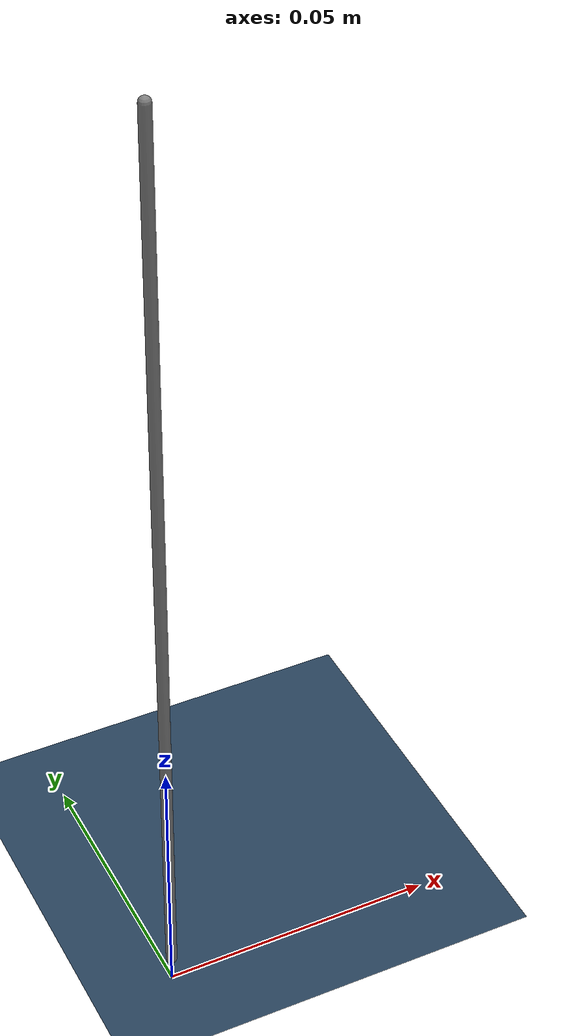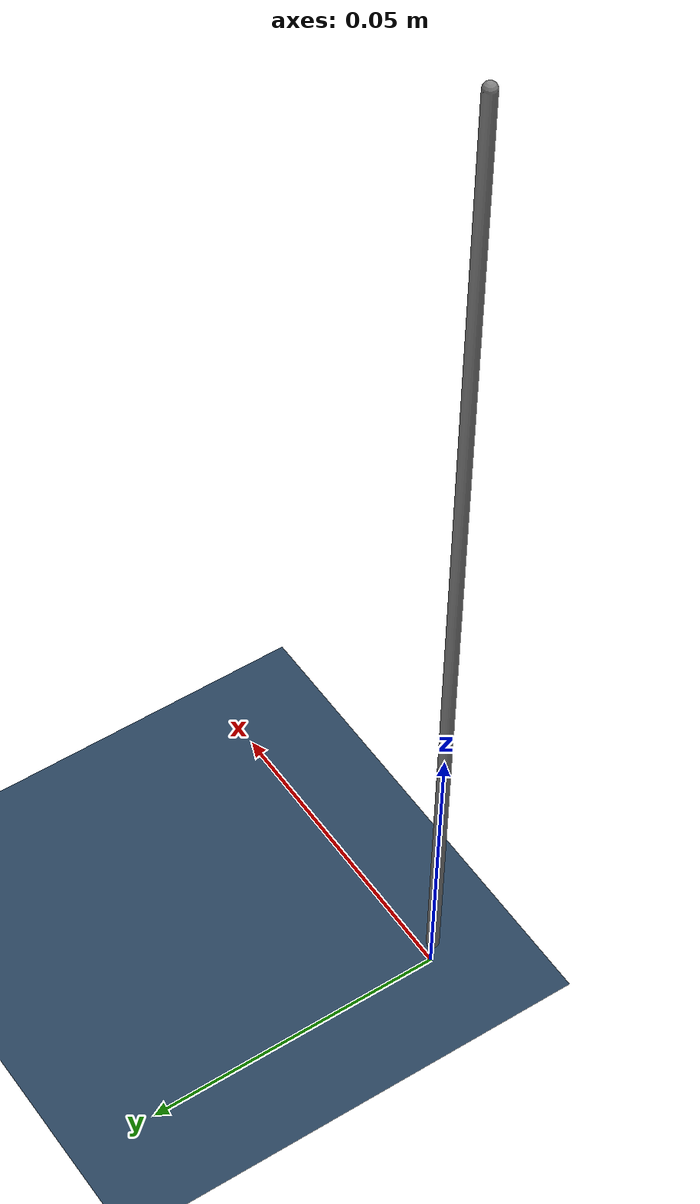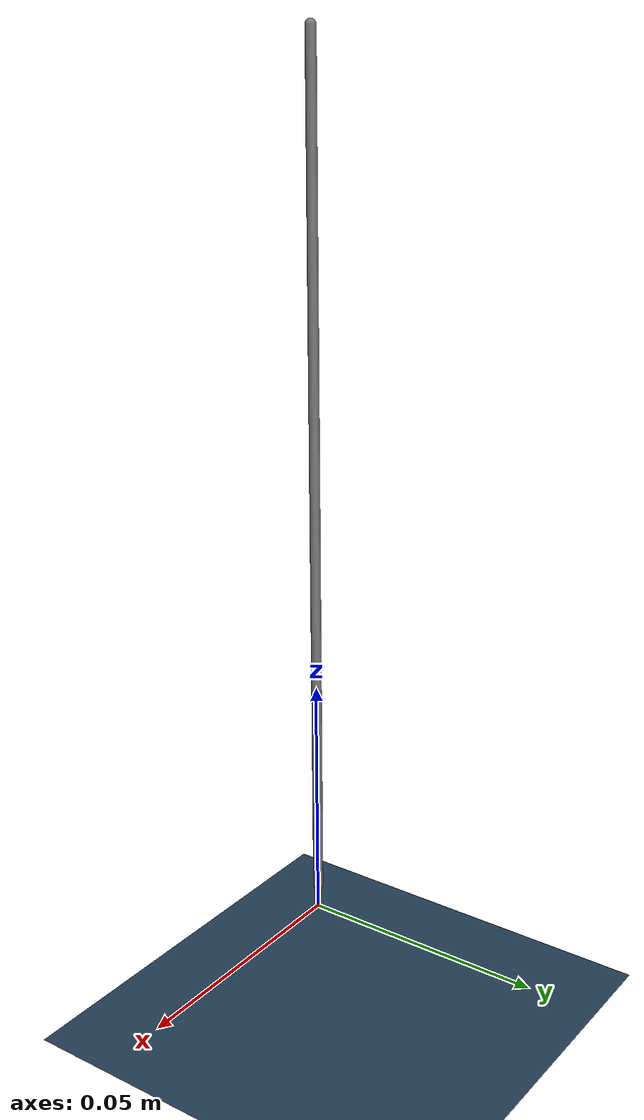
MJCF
<mujoco model="ur5e scene">
  <visual>
    <headlight diffuse="0.6 0.6 0.6" ambient="0.1 0.1 0.1" specular="0 0 0"/>
    <rgba haze="0.15 0.25 0.35 1"/>
    <global azimuth="120" elevation="-20"/>
  </visual>

  <asset>
    <texture type="skybox" builtin="gradient" rgb1="0.3 0.5 0.7" rgb2="0 0 0" width="512" height="3072"/>
    <texture type="2d" name="groundplane" builtin="checker" mark="edge" rgb1="0.2 0.3 0.4" rgb2="0.1 0.2 0.3"
      markrgb="0.8 0.8 0.8" width="300" height="300"/>
    <material name="groundplane" texture="groundplane" texuniform="true" texrepeat="5 5" reflectance="0.2"/>
  </asset>

  <worldbody>
    <light pos="0 0 1.5" dir="0 0 -1" directional="true"/>
    <geom name="floor" size="0 0 0.05" type="plane" material="groundplane"/>
    <camera name="fixed" pos="-2 -2 2" xyaxes="1 -1 0 0.5 0.5 1"/>

    <body name="pencil" pos="0 0 0.09" quat="1 0 0 0"> <!-- We need to loook at the composition of this body and its elements, the orientations are weird-->
        <joint name="Pencil_joint" type="slide" axis="0 0 1"/>
        <!--freejoint/-->
        <!--inertial mass="0.0001" pos="0 0 0" diaginertia="0.1 0.1 0.1"/-->
        <geom type="capsule" pos="0 0 0" size="0.001 0.085" quat="1 0 0 0" solimp=".99 .99 .01"  solref=".001 1" friction="0 0 0"/>
    </body>
  </worldbody>

  <actuator>
    <general name="Pencil_actuator" joint="Pencil_joint"/>
  </actuator>

</mujoco>
